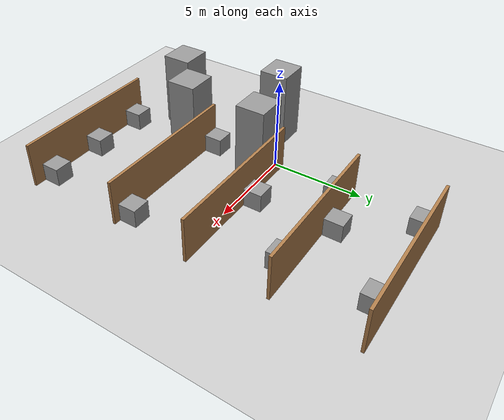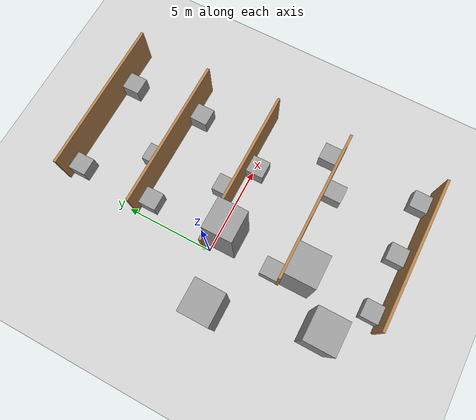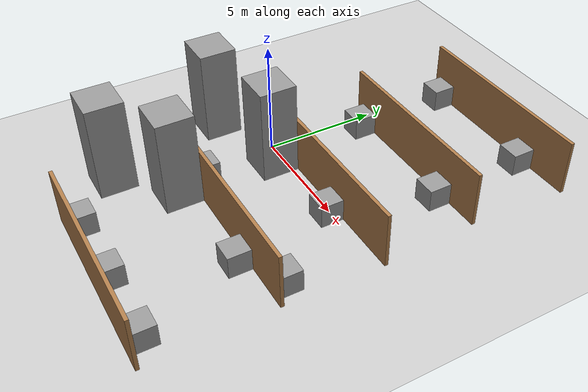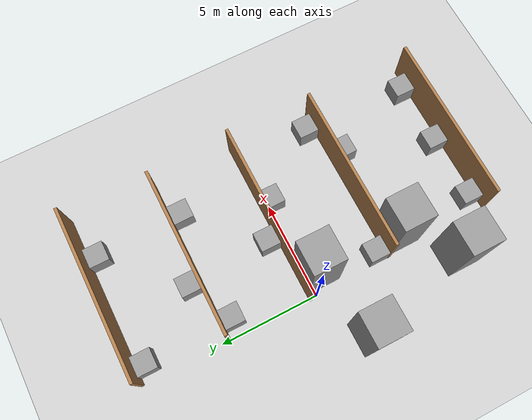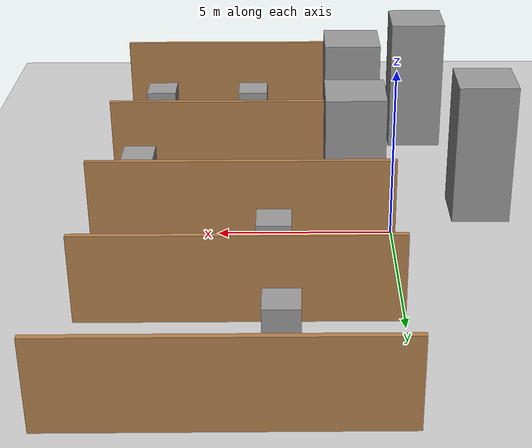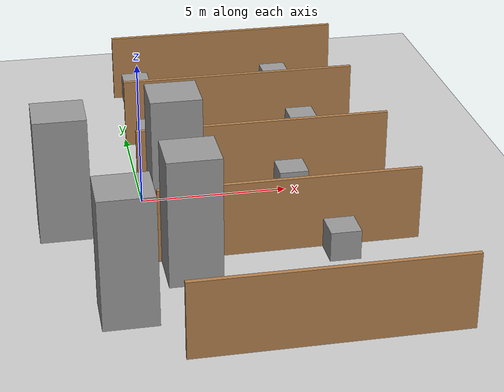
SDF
<sdf version="1.7">
 <world name="default">
  <light name="sun" type="directional">
   <pose>0 0 10 0 -0 0</pose>
   <diffuse>0.8 0.8 0.8 1</diffuse>
   <specular>0.2 0.2 0.2 1</specular>
   <attenuation>
    <range>1000</range>
    <constant>0.9</constant>
    <linear>0.01</linear>
    <quadratic>0.001</quadratic>
   </attenuation>
   <direction>-0.5 0.1 -0.9</direction>
   <spot><inner_angle>0</inner_angle><outer_angle>0</outer_angle><falloff>0</falloff></spot>
  </light>
  <model name="ground_plane">
   <static>1</static>
   <link name="link">
    <collision name="collision">
     <geometry><plane><normal>0 0 1</normal><size>100 100</size></plane></geometry>
     <surface><friction><ode><mu>100</mu><mu2>50</mu2></ode></friction></surface>
    </collision>
    <visual name="visual">
     <cast_shadows>0</cast_shadows>
     <geometry><plane><normal>0 0 1</normal><size>100 100</size></plane></geometry>
     <material>
      <script><uri>file://media/materials/scripts/gazebo.material</uri><name>Gazebo/Grey</name></script>
     </material>
    </visual>
   </link>
  </model>
  <gravity>0 0 -9.8</gravity>
  <magnetic_field>6e-06 2.3e-05 -4.2e-05</magnetic_field>
  <atmosphere type="adiabatic"/>
  <physics type="ode">
   <max_step_size>0.001</max_step_size>
   <real_time_factor>1</real_time_factor>
   <real_time_update_rate>1000</real_time_update_rate>
  </physics>
  <scene><ambient>0.4 0.4 0.4 1</ambient><background>0.7 0.7 0.7 1</background><shadows>1</shadows></scene>
  <audio><device>default</device></audio>
  <spherical_coordinates>
   <surface_model>EARTH_WGS84</surface_model>
   <latitude_deg>0</latitude_deg>
   <longitude_deg>0</longitude_deg>
   <elevation>0</elevation>
   <heading_deg>0</heading_deg>
  </spherical_coordinates>
  <model name="Untitled">
   <pose>4.06118 -0.222818 0 0 -0 0</pose>
   <link name="Wall_11">
    <collision name="Wall_11_Collision">
     <geometry><box><size>8.5 0.15 2.5</size></box></geometry>
     <pose>0 0 1.25 0 -0 0</pose>
    </collision>
    <visual name="Wall_11_Visual">
     <pose>0 0 1.25 0 -0 0</pose>
     <geometry><box><size>8.5 0.15 2.5</size></box></geometry>
     <material>
      <script><uri>file://media/materials/scripts/gazebo.material</uri><name>Gazebo/Wood</name></script>
      <ambient>1 1 1 1</ambient>
     </material>
     <meta><layer>0</layer></meta>
    </visual>
    <pose>0.278761 -9.24202 0 0 -0 0</pose>
   </link>
   <link name="Wall_2">
    <collision name="Wall_2_Collision">
     <geometry><box><size>8.75 0.15 2.5</size></box></geometry>
     <pose>0 0 1.25 0 -0 0</pose>
    </collision>
    <visual name="Wall_2_Visual">
     <pose>0 0 1.25 0 -0 0</pose>
     <geometry><box><size>8.75 0.15 2.5</size></box></geometry>
     <material>
      <script><uri>file://media/materials/scripts/gazebo.material</uri><name>Gazebo/Wood</name></script>
      <ambient>1 1 1 1</ambient>
     </material>
     <meta><layer>0</layer></meta>
    </visual>
    <pose>0.311029 9.24202 0 0 -0 0</pose>
   </link>
   <link name="Wall_5">
    <collision name="Wall_5_Collision">
     <geometry><box><size>8.5 0.15 2.5</size></box></geometry>
     <pose>0 0 1.25 0 -0 0</pose>
    </collision>
    <visual name="Wall_5_Visual">
     <pose>0 0 1.25 0 -0 0</pose>
     <geometry><box><size>8.5 0.15 2.5</size></box></geometry>
     <material>
      <script><uri>file://media/materials/scripts/gazebo.material</uri><name>Gazebo/Wood</name></script>
      <ambient>1 1 1 1</ambient>
     </material>
     <meta><layer>0</layer></meta>
    </visual>
    <pose>0.165164 4.82682 0 0 -0 3.14159</pose>
   </link>
   <link name="Wall_7">
    <collision name="Wall_7_Collision">
     <geometry><box><size>8.75 0.15 2.5</size></box></geometry>
     <pose>0 0 1.25 0 -0 0</pose>
    </collision>
    <visual name="Wall_7_Visual">
     <pose>0 0 1.25 0 -0 0</pose>
     <geometry><box><size>8.75 0.15 2.5</size></box></geometry>
     <material>
      <script><uri>file://media/materials/scripts/gazebo.material</uri><name>Gazebo/Wood</name></script>
      <ambient>1 1 1 1</ambient>
     </material>
     <meta><layer>0</layer></meta>
    </visual>
    <pose>0.226073 0.563848 0 0 -0 0</pose>
   </link>
   <link name="Wall_9">
    <collision name="Wall_9_Collision">
     <geometry><box><size>8.5 0.15 2.5</size></box></geometry>
     <pose>0 0 1.25 0 -0 0</pose>
    </collision>
    <visual name="Wall_9_Visual">
     <pose>0 0 1.25 0 -0 0</pose>
     <geometry><box><size>8.5 0.15 2.5</size></box></geometry>
     <material>
      <script><uri>file://media/materials/scripts/gazebo.material</uri><name>Gazebo/Wood</name></script>
      <ambient>1 1 1 1</ambient>
     </material>
     <meta><layer>0</layer></meta>
    </visual>
    <pose>0.225561 -3.78898 0 0 -0 0</pose>
   </link>
   <static>1</static>
  </model>
  <model name="unit_box">
   <pose>0.821576 8.4442 0.5 0 -0 1e-06</pose>
   <link name="link">
    <inertial>
     <mass>1</mass>
     <inertia>
      <ixx>0.166667</ixx>
      <ixy>0</ixy>
      <ixz>0</ixz>
      <iyy>0.166667</iyy>
      <iyz>0</iyz>
      <izz>0.166667</izz>
     </inertia>
    </inertial>
    <collision name="collision"><geometry><box><size>1 1 1</size></box></geometry></collision>
    <visual name="visual">
     <geometry><box><size>1 1 1</size></box></geometry>
     <material>
      <script><name>Gazebo/Grey</name><uri>file://media/materials/scripts/gazebo.material</uri></script>
     </material>
    </visual>
   </link>
  </model>
  <model name="unit_box_0">
   <pose>3.14273 5.17901 0.5 0 -0 3e-06</pose>
   <link name="link">
    <inertial>
     <mass>1</mass>
     <inertia>
      <ixx>0.166667</ixx>
      <ixy>0</ixy>
      <ixz>0</ixz>
      <iyy>0.166667</iyy>
      <iyz>0</iyz>
      <izz>0.166667</izz>
     </inertia>
    </inertial>
    <collision name="collision"><geometry><box><size>1 1 1</size></box></geometry></collision>
    <visual name="visual">
     <geometry><box><size>1 1 1</size></box></geometry>
     <material>
      <script><name>Gazebo/Grey</name><uri>file://media/materials/scripts/gazebo.material</uri></script>
     </material>
    </visual>
   </link>
  </model>
  <model name="unit_box_1">
   <pose>6.48794 4.02899 0.5 0 -0 3e-06</pose>
   <link name="link">
    <inertial>
     <mass>1</mass>
     <inertia>
      <ixx>0.166667</ixx>
      <ixy>0</ixy>
      <ixz>0</ixz>
      <iyy>0.166667</iyy>
      <iyz>0</iyz>
      <izz>0.166667</izz>
     </inertia>
    </inertial>
    <collision name="collision"><geometry><box><size>1 1 1</size></box></geometry></collision>
    <visual name="visual">
     <geometry><box><size>1 1 1</size></box></geometry>
     <material>
      <script><name>Gazebo/Grey</name><uri>file://media/materials/scripts/gazebo.material</uri></script>
     </material>
    </visual>
   </link>
  </model>
  <model name="unit_box_2">
   <pose>3.38166 0.916031 0.5 0 0 -2e-06</pose>
   <link name="link">
    <inertial>
     <mass>1</mass>
     <inertia>
      <ixx>0.166667</ixx>
      <ixy>0</ixy>
      <ixz>0</ixz>
      <iyy>0.166667</iyy>
      <iyz>0</iyz>
      <izz>0.166667</izz>
     </inertia>
    </inertial>
    <collision name="collision"><geometry><box><size>1 1 1</size></box></geometry></collision>
    <visual name="visual">
     <geometry><box><size>1 1 1</size></box></geometry>
     <material>
      <script><name>Gazebo/Grey</name><uri>file://media/materials/scripts/gazebo.material</uri></script>
     </material>
    </visual>
   </link>
  </model>
  <model name="unit_box_3">
   <pose>6.3855 8.4442 0.5 0 -0 0</pose>
   <link name="link">
    <inertial>
     <mass>1</mass>
     <inertia>
      <ixx>0.166667</ixx>
      <ixy>0</ixy>
      <ixz>0</ixz>
      <iyy>0.166667</iyy>
      <iyz>0</iyz>
      <izz>0.166667</izz>
     </inertia>
    </inertial>
    <collision name="collision"><geometry><box><size>1 1 1</size></box></geometry></collision>
    <visual name="visual">
     <geometry><box><size>1 1 1</size></box></geometry>
     <material>
      <script><name>Gazebo/Grey</name><uri>file://media/materials/scripts/gazebo.material</uri></script>
     </material>
    </visual>
   </link>
  </model>
  <model name="unit_box_4">
   <pose>0.889852 4.02901 0.5 0 -0 2e-06</pose>
   <link name="link">
    <inertial>
     <mass>1</mass>
     <inertia>
      <ixx>0.166667</ixx>
      <ixy>0</ixy>
      <ixz>0</ixz>
      <iyy>0.166667</iyy>
      <iyz>0</iyz>
      <izz>0.166667</izz>
     </inertia>
    </inertial>
    <collision name="collision"><geometry><box><size>1 1 1</size></box></geometry></collision>
    <visual name="visual">
     <geometry><box><size>1 1 1</size></box></geometry>
     <material>
      <script><name>Gazebo/Grey</name><uri>file://media/materials/scripts/gazebo.material</uri></script>
     </material>
    </visual>
   </link>
  </model>
  <model name="unit_box_5">
   <pose>0.548506 -3.43679 0.499995 -1e-05 0 0</pose>
   <link name="link">
    <inertial>
     <mass>1</mass>
     <inertia>
      <ixx>0.166667</ixx>
      <ixy>0</ixy>
      <ixz>0</ixz>
      <iyy>0.166667</iyy>
      <iyz>0</iyz>
      <izz>0.166667</izz>
     </inertia>
    </inertial>
    <collision name="collision"><geometry><box><size>1 1 1</size></box></geometry></collision>
    <visual name="visual">
     <geometry><box><size>1 1 1</size></box></geometry>
     <material>
      <script><name>Gazebo/Grey</name><uri>file://media/materials/scripts/gazebo.material</uri></script>
     </material>
    </visual>
   </link>
  </model>
  <model name="unit_box_6">
   <pose>5.15667 -0.233965 0.499995 -9e-06 -0 0</pose>
   <link name="link">
    <inertial>
     <mass>1</mass>
     <inertia>
      <ixx>0.166667</ixx>
      <ixy>0</ixy>
      <ixz>0</ixz>
      <iyy>0.166667</iyy>
      <iyz>0</iyz>
      <izz>0.166667</izz>
     </inertia>
    </inertial>
    <collision name="collision"><geometry><box><size>1 1 1</size></box></geometry></collision>
    <visual name="visual">
     <geometry><box><size>1 1 1</size></box></geometry>
     <material>
      <script><name>Gazebo/Grey</name><uri>file://media/materials/scripts/gazebo.material</uri></script>
     </material>
    </visual>
   </link>
  </model>
  <model name="unit_box_7">
   <pose>7.68262 -3.4368 0.499996 7e-06 -0 2e-06</pose>
   <link name="link">
    <inertial>
     <mass>1</mass>
     <inertia>
      <ixx>0.166667</ixx>
      <ixy>0</ixy>
      <ixz>0</ixz>
      <iyy>0.166667</iyy>
      <iyz>0</iyz>
      <izz>0.166667</izz>
     </inertia>
    </inertial>
    <collision name="collision"><geometry><box><size>1 1 1</size></box></geometry></collision>
    <visual name="visual">
     <geometry><box><size>1 1 1</size></box></geometry>
     <material>
      <script><name>Gazebo/Grey</name><uri>file://media/materials/scripts/gazebo.material</uri></script>
     </material>
    </visual>
   </link>
  </model>
  <model name="unit_box_5_0">
   <link name="link">
    <inertial>
     <mass>11.6417</mass>
     <inertia><ixx>19.9013</ixx><ixy>0</ixy><ixz>0</ixz><iyy>20.1756</iyy><iyz>0</iyz><izz>5.34613</izz></inertia>
    </inertial>
    <pose>-0.489188 -0.297788 -3e-06 0 -0 0</pose>
    <visual name="visual">
     <geometry><box><size>1.70196 1.61679 4.23082</size></box></geometry>
     <material>
      <script><name>Gazebo/Grey</name><uri>file://media/materials/scripts/gazebo.material</uri></script>
      <shader type="pixel"/>
     </material>
    </visual>
    <collision name="collision">
     <geometry><box><size>1.70196 1.61679 4.23082</size></box></geometry>
     <surface>
      <friction>
       <ode><mu>1</mu><mu2>1</mu2><fdir1>0 0 0</fdir1><slip1>0</slip1><slip2>0</slip2></ode>
       <torsional>
        <coefficient>1</coefficient>
        <patch_radius>0</patch_radius>
        <surface_radius>0</surface_radius>
        <use_patch_radius>1</use_patch_radius>
        <ode><slip>0</slip></ode>
       </torsional>
      </friction>
      <bounce><restitution_coefficient>0</restitution_coefficient><threshold>1e+06</threshold></bounce>
      <contact>
       <collide_without_contact>0</collide_without_contact>
       <collide_without_contact_bitmask>1</collide_without_contact_bitmask>
       <collide_bitmask>1</collide_bitmask>
       <ode>
        <soft_cfm>0</soft_cfm>
        <soft_erp>0.2</soft_erp>
        <kp>1e+13</kp>
        <kd>1</kd>
        <max_vel>0.01</max_vel>
        <min_depth>0</min_depth>
       </ode>
       <bullet>
        <split_impulse>1</split_impulse>
        <split_impulse_penetration_threshold>-0.01</split_impulse_penetration_threshold>
        <soft_cfm>0</soft_cfm>
        <soft_erp>0.2</soft_erp>
        <kp>1e+13</kp>
        <kd>1</kd>
       </bullet>
      </contact>
     </surface>
    </collision>
   </link>
   <static>0</static>
   <pose>1.57255 -0.256457 2.11541 1e-06 -1e-06 -3.1e-05</pose>
  </model>
  <model name="unit_box_5_1">
   <link name="link">
    <inertial>
     <mass>11.6417</mass>
     <inertia><ixx>19.9013</ixx><ixy>0</ixy><ixz>0</ixz><iyy>20.1756</iyy><iyz>0</iyz><izz>5.34613</izz></inertia>
    </inertial>
    <pose>-0.489188 -0.297788 -3e-06 0 -0 0</pose>
    <visual name="visual">
     <geometry><box><size>1.70196 1.61679 4.23082</size></box></geometry>
     <material>
      <script><name>Gazebo/Grey</name><uri>file://media/materials/scripts/gazebo.material</uri></script>
      <shader type="pixel"/>
     </material>
    </visual>
    <collision name="collision">
     <geometry><box><size>1.70196 1.61679 4.23082</size></box></geometry>
     <surface>
      <friction>
       <ode><mu>1</mu><mu2>1</mu2><fdir1>0 0 0</fdir1><slip1>0</slip1><slip2>0</slip2></ode>
       <torsional>
        <coefficient>1</coefficient>
        <patch_radius>0</patch_radius>
        <surface_radius>0</surface_radius>
        <use_patch_radius>1</use_patch_radius>
        <ode><slip>0</slip></ode>
       </torsional>
      </friction>
      <bounce><restitution_coefficient>0</restitution_coefficient><threshold>1e+06</threshold></bounce>
      <contact>
       <collide_without_contact>0</collide_without_contact>
       <collide_without_contact_bitmask>1</collide_without_contact_bitmask>
       <collide_bitmask>1</collide_bitmask>
       <ode>
        <soft_cfm>0</soft_cfm>
        <soft_erp>0.2</soft_erp>
        <kp>1e+13</kp>
        <kd>1</kd>
        <max_vel>0.01</max_vel>
        <min_depth>0</min_depth>
       </ode>
       <bullet>
        <split_impulse>1</split_impulse>
        <split_impulse_penetration_threshold>-0.01</split_impulse_penetration_threshold>
        <soft_cfm>0</soft_cfm>
        <soft_erp>0.2</soft_erp>
        <kp>1e+13</kp>
        <kd>1</kd>
       </bullet>
      </contact>
     </surface>
    </collision>
   </link>
   <static>0</static>
   <pose>-2.22009 -1.14094 2.11541 -0 -0 -2.6e-05</pose>
  </model>
  <model name="unit_box_5_2">
   <link name="link">
    <inertial>
     <mass>11.6417</mass>
     <inertia><ixx>19.9013</ixx><ixy>0</ixy><ixz>0</ixz><iyy>20.1756</iyy><iyz>0</iyz><izz>5.34613</izz></inertia>
    </inertial>
    <pose>-0.489188 -0.297788 -3e-06 0 -0 0</pose>
    <visual name="visual">
     <geometry><box><size>1.70196 1.61679 4.23082</size></box></geometry>
     <material>
      <script><name>Gazebo/Grey</name><uri>file://media/materials/scripts/gazebo.material</uri></script>
      <shader type="pixel"/>
     </material>
    </visual>
    <collision name="collision">
     <geometry><box><size>1.70196 1.61679 4.23082</size></box></geometry>
     <surface>
      <friction>
       <ode><mu>1</mu><mu2>1</mu2><fdir1>0 0 0</fdir1><slip1>0</slip1><slip2>0</slip2></ode>
       <torsional>
        <coefficient>1</coefficient>
        <patch_radius>0</patch_radius>
        <surface_radius>0</surface_radius>
        <use_patch_radius>1</use_patch_radius>
        <ode><slip>0</slip></ode>
       </torsional>
      </friction>
      <bounce><restitution_coefficient>0</restitution_coefficient><threshold>1e+06</threshold></bounce>
      <contact>
       <collide_without_contact>0</collide_without_contact>
       <collide_without_contact_bitmask>1</collide_without_contact_bitmask>
       <collide_bitmask>1</collide_bitmask>
       <ode>
        <soft_cfm>0</soft_cfm>
        <soft_erp>0.2</soft_erp>
        <kp>1e+13</kp>
        <kd>1</kd>
        <max_vel>0.01</max_vel>
        <min_depth>0</min_depth>
       </ode>
       <bullet>
        <split_impulse>1</split_impulse>
        <split_impulse_penetration_threshold>-0.01</split_impulse_penetration_threshold>
        <soft_cfm>0</soft_cfm>
        <soft_erp>0.2</soft_erp>
        <kp>1e+13</kp>
        <kd>1</kd>
       </bullet>
      </contact>
     </surface>
    </collision>
   </link>
   <static>0</static>
   <pose>-0.752283 -6.60251 2.11541 0 -0 1.5e-05</pose>
  </model>
  <model name="unit_box_5_3">
   <link name="link">
    <inertial>
     <mass>11.6417</mass>
     <inertia><ixx>19.9013</ixx><ixy>0</ixy><ixz>0</ixz><iyy>20.1756</iyy><iyz>0</iyz><izz>5.34613</izz></inertia>
    </inertial>
    <pose>-0.489188 -0.297788 -3e-06 0 -0 0</pose>
    <visual name="visual">
     <geometry><box><size>1.70196 1.61679 4.23082</size></box></geometry>
     <material>
      <script><name>Gazebo/Grey</name><uri>file://media/materials/scripts/gazebo.material</uri></script>
      <shader type="pixel"/>
     </material>
    </visual>
    <collision name="collision">
     <geometry><box><size>1.70196 1.61679 4.23082</size></box></geometry>
     <surface>
      <friction>
       <ode><mu>1</mu><mu2>1</mu2><fdir1>0 0 0</fdir1><slip1>0</slip1><slip2>0</slip2></ode>
       <torsional>
        <coefficient>1</coefficient>
        <patch_radius>0</patch_radius>
        <surface_radius>0</surface_radius>
        <use_patch_radius>1</use_patch_radius>
        <ode><slip>0</slip></ode>
       </torsional>
      </friction>
      <bounce><restitution_coefficient>0</restitution_coefficient><threshold>1e+06</threshold></bounce>
      <contact>
       <collide_without_contact>0</collide_without_contact>
       <collide_without_contact_bitmask>1</collide_without_contact_bitmask>
       <collide_bitmask>1</collide_bitmask>
       <ode>
        <soft_cfm>0</soft_cfm>
        <soft_erp>0.2</soft_erp>
        <kp>1e+13</kp>
        <kd>1</kd>
        <max_vel>0.01</max_vel>
        <min_depth>0</min_depth>
       </ode>
       <bullet>
        <split_impulse>1</split_impulse>
        <split_impulse_penetration_threshold>-0.01</split_impulse_penetration_threshold>
        <soft_cfm>0</soft_cfm>
        <soft_erp>0.2</soft_erp>
        <kp>1e+13</kp>
        <kd>1</kd>
       </bullet>
      </contact>
     </surface>
    </collision>
   </link>
   <static>0</static>
   <pose>1.47143 -4.60202 2.11541 0 -0 0.004835</pose>
  </model>
  <model name="unit_box_8">
   <pose>0.988578 -8.88984 0.499999 2e-06 -0 0</pose>
   <link name="link">
    <inertial>
     <mass>1</mass>
     <inertia>
      <ixx>0.166667</ixx>
      <ixy>0</ixy>
      <ixz>0</ixz>
      <iyy>0.166667</iyy>
      <iyz>0</iyz>
      <izz>0.166667</izz>
     </inertia>
    </inertial>
    <collision name="collision"><geometry><box><size>1 1 1</size></box></geometry></collision>
    <visual name="visual">
     <geometry><box><size>1 1 1</size></box></geometry>
     <material>
      <script><name>Gazebo/Grey</name><uri>file://media/materials/scripts/gazebo.material</uri></script>
     </material>
    </visual>
   </link>
  </model>
  <model name="unit_box_9">
   <pose>4.23142 -8.88984 0.5 0 -0 1e-06</pose>
   <link name="link">
    <inertial>
     <mass>1</mass>
     <inertia>
      <ixx>0.166667</ixx>
      <ixy>0</ixy>
      <ixz>0</ixz>
      <iyy>0.166667</iyy>
      <iyz>0</iyz>
      <izz>0.166667</izz>
     </inertia>
    </inertial>
    <collision name="collision"><geometry><box><size>1 1 1</size></box></geometry></collision>
    <visual name="visual">
     <geometry><box><size>1 1 1</size></box></geometry>
     <material>
      <script><name>Gazebo/Grey</name><uri>file://media/materials/scripts/gazebo.material</uri></script>
     </material>
    </visual>
   </link>
  </model>
  <model name="unit_box_10">
   <pose>5.83575 -4.5868 0.499996 8e-06 -0 0</pose>
   <link name="link">
    <inertial>
     <mass>1</mass>
     <inertia>
      <ixx>0.166667</ixx>
      <ixy>0</ixy>
      <ixz>0</ixz>
      <iyy>0.166667</iyy>
      <iyz>0</iyz>
      <izz>0.166667</izz>
     </inertia>
    </inertial>
    <collision name="collision"><geometry><box><size>1 1 1</size></box></geometry></collision>
    <visual name="visual">
     <geometry><box><size>1 1 1</size></box></geometry>
     <material>
      <script><name>Gazebo/Grey</name><uri>file://media/materials/scripts/gazebo.material</uri></script>
     </material>
    </visual>
   </link>
  </model>
  <model name="unit_box_11">
   <pose>7.44638 -8.88984 0.499995 9e-06 -0 0</pose>
   <link name="link">
    <inertial>
     <mass>1</mass>
     <inertia>
      <ixx>0.166667</ixx>
      <ixy>0</ixy>
      <ixz>0</ixz>
      <iyy>0.166667</iyy>
      <iyz>0</iyz>
      <izz>0.166667</izz>
     </inertia>
    </inertial>
    <collision name="collision"><geometry><box><size>1 1 1</size></box></geometry></collision>
    <visual name="visual">
     <geometry><box><size>1 1 1</size></box></geometry>
     <material>
      <script><name>Gazebo/Grey</name><uri>file://media/materials/scripts/gazebo.material</uri></script>
     </material>
    </visual>
   </link>
  </model>
 </world>
</sdf>
